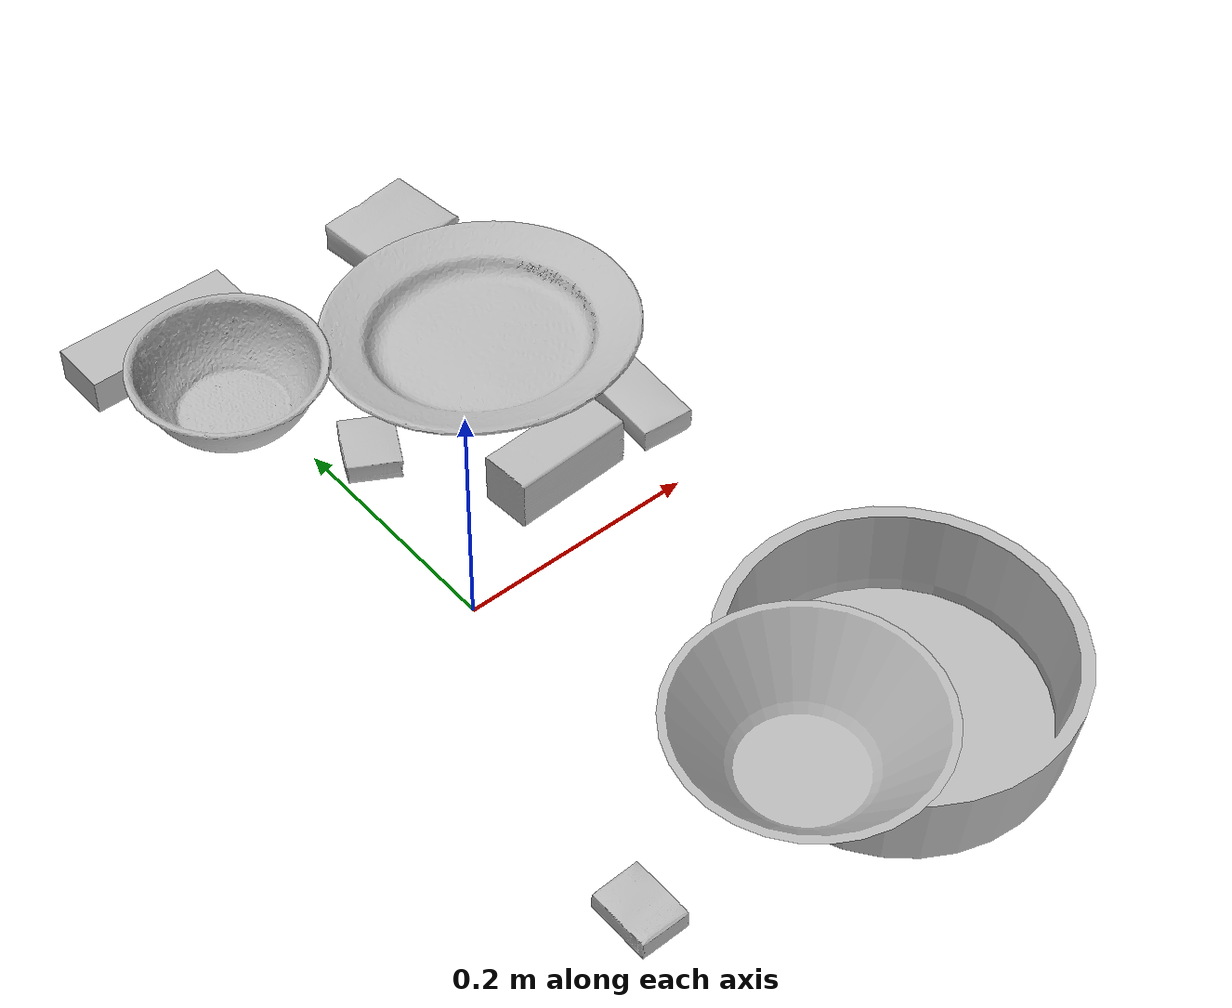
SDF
<sdf version="1.4">
  <world name="default">
    <light name="light1" type="point">
      <pose>0 0 1 0 0 0</pose>
      <diffuse>3 3 3 1</diffuse>
      <specular>3 3 3 1</specular>
    </light>
    <light name="light2" type="point">
      <pose>0 0.5 2 0 0 0</pose>
      <diffuse>1 1 1 1</diffuse>
      <specular>1 1 1 1</specular>
    </light>
    <light name="light3" type="point">
      <pose>0 0.5 2 0 0 0</pose>
      <diffuse>3 3 3 1</diffuse>
      <specular>3 3 3 1</specular>
    </light>
    <scene>
      <ambient>0.7 0.7 0.7</ambient>
    </scene>
    <model name="box1">
      <link name="link_box1">
        <collision name="default">
          <geometry>
            <mesh>
              <uri>model://jenga/collision_meshes/collision.obj</uri>
              <scale>1.0 1.0 1.0</scale>
            </mesh>
          </geometry>
          <surface>
            <friction>
              <ode>
                <mu>0.5</mu>
                <mu2>0.5</mu2>
              </ode>
            </friction>
          <contact>
        <ode>
            <max_vel>0</max_vel>
            <min_depth>0.0001</min_depth>
            <kp>1e8</kp>
        </ode>
    </contact></surface>
        </collision>
        <visual name="default">
          <geometry>
            <mesh>
              <uri>model://jenga/visual_meshes/visual.dae</uri>
              <scale>1.0 1.0 1.0</scale>
            </mesh>
          </geometry>
        </visual>
        <inertial>
          <mass>0.21843092143535614</mass>
          <pose>-2.502855807051674e-07 -0.00010250011109746993 -4.092339804628864e-05 0.0 -7.342154049184251e-07 0.0</pose>
          <inertia>
            <ixx>6.0445138e-05</ixx>
            <iyy>0.0004095746</iyy>
            <izz>0.00043725572</izz>
            <ixy>0</ixy>
            <ixz>0</ixz>
            <iyz>0</iyz>
          </inertia>
        </inertial>
      </link>
      <pose>-0.026206163689494133 0.3752001225948334 0.015000108629465103 1.4781236314186355e-05 -2.0627287181579481e-07 -3.1415855950033924</pose>
    </model>
    <model name="box11">
      <link name="link_box11">
        <collision name="default">
          <geometry>
            <mesh>
              <uri>model://pudding_box/collision_meshes/collision.obj</uri>
              <scale>0.5 0.5 0.5</scale>
            </mesh>
          </geometry>
          <surface>
            <friction>
              <ode>
                <mu>0.5</mu>
                <mu2>0.5</mu2>
              </ode>
            </friction>
          <contact>
        <ode>
            <max_vel>0</max_vel>
            <min_depth>0.0001</min_depth>
            <kp>1e8</kp>
        </ode>
    </contact></surface>
        </collision>
        <visual name="default">
          <geometry>
            <mesh>
              <uri>model://pudding_box/visual_meshes/visual.dae</uri>
              <scale>0.5 0.5 0.5</scale>
            </mesh>
          </geometry>
        </visual>
        <inertial>
          <mass>0.04130476340651512</mass>
          <pose>0.00024474109522998333 0.00040339428232982755 -0.0002594413817860186 0.005213101341234124 -0.006603795469139562 0.020079830758209564</pose>
          <inertia>
            <ixx>1.1673226e-05</ixx>
            <iyy>7.85383e-06</iyy>
            <izz>1.723857e-05</izz>
            <ixy>0</ixy>
            <ixz>0</ixz>
            <iyz>0</iyz>
          </inertia>
        </inertial>
      </link>
      <pose>0.03472243994474411 0.17355391383171082 0.009862905368208885 0.022348498863978737 -0.011391763490800275 2.6458016110264935</pose>
    </model>
    <model name="box2">
      <link name="link_box2">
        <collision name="default">
          <geometry>
            <mesh>
              <uri>model://gelatin_box/collision_meshes/collision.obj</uri>
              <scale>1.0 1.0 1.0</scale>
            </mesh>
          </geometry>
          <surface>
            <friction>
              <ode>
                <mu>0.5</mu>
                <mu2>0.5</mu2>
              </ode>
            </friction>
          <contact>
        <ode>
            <max_vel>0</max_vel>
            <min_depth>0.0001</min_depth>
            <kp>1e8</kp>
        </ode>
    </contact></surface>
        </collision>
        <visual name="default">
          <geometry>
            <mesh>
              <uri>model://gelatin_box/visual_meshes/visual.dae</uri>
              <scale>1.0 1.0 1.0</scale>
            </mesh>
          </geometry>
        </visual>
        <inertial>
          <mass>0.24153950810432434</mass>
          <pose>0.0004319618456065655 0.00011156871914863586 -0.0003640321083366871 -0.001050371984258798 -0.004755819621622892 0.016440559472145032</pose>
          <inertia>
            <ixx>0.00017050719</ixx>
            <iyy>0.00012179239</iyy>
            <izz>0.0002595499</izz>
            <ixy>0</ixy>
            <ixz>0</ixz>
            <iyz>0</iyz>
          </inertia>
        </inertial>
      </link>
      <pose>0.1966547816991806 0.3591346740722656 0.015168299898505211 0.0055995700471692805 -0.007306917396555964 1.6695660371040166</pose>
    </model>
    <model name="box21">
      <link name="link_box21">
        <collision name="default">
          <geometry>
            <mesh>
              <uri>model://cracker_box/collision_meshes/collision.obj</uri>
              <scale>0.25 0.25 0.25</scale>
            </mesh>
          </geometry>
          <surface>
            <friction>
              <ode>
                <mu>0.5</mu>
                <mu2>0.5</mu2>
              </ode>
            </friction>
          <contact>
        <ode>
            <max_vel>0</max_vel>
            <min_depth>0.0001</min_depth>
            <kp>1e8</kp>
        </ode>
    </contact></surface>
        </collision>
        <visual name="default">
          <geometry>
            <mesh>
              <uri>model://cracker_box/visual_meshes/visual.dae</uri>
              <scale>0.25 0.25 0.25</scale>
            </mesh>
          </geometry>
        </visual>
        <inertial>
          <mass>0.04855586588382721</mass>
          <pose>0.00023660322767682374 6.358561222441494e-05 -0.00042573834070935845 -0.00031620783521113603 -0.01110649053142329 0.0025467954689779603</pose>
          <inertia>
            <ixx>7.719027e-06</ixx>
            <iyy>1.2745631e-05</iyy>
            <izz>1.8189185e-05</izz>
            <ixy>0</ixy>
            <ixz>0</ixz>
            <iyz>0</iyz>
          </inertia>
        </inertial>
      </link>
      <pose>-0.07951704412698746 -0.27825313806533813 0.009120450355112553 -0.011787964458293762 -0.007367205808352632 1.5713564170318506</pose>
    </model>
    <model name="box3">
      <link name="link_box3">
        <collision name="default">
          <geometry>
            <mesh>
              <uri>model://wood_block/collision_meshes/collision.obj</uri>
              <scale>0.5 0.5 0.5</scale>
            </mesh>
          </geometry>
          <surface>
            <friction>
              <ode>
                <mu>0.5</mu>
                <mu2>0.5</mu2>
              </ode>
            </friction>
          <contact>
        <ode>
            <max_vel>0</max_vel>
            <min_depth>0.0001</min_depth>
            <kp>1e8</kp>
        </ode>
    </contact></surface>
        </collision>
        <visual name="default">
          <geometry>
            <mesh>
              <uri>model://wood_block/visual_meshes/visual.dae</uri>
              <scale>0.5 0.5 0.5</scale>
            </mesh>
          </geometry>
        </visual>
        <inertial>
          <mass>0.17342756688594818</mass>
          <pose>-2.906657982748584e-06 -0.000285404734313488 0.00013204291462898254 -0.052208426481931185 -0.005192696107352816 -0.006861379630616638</pose>
          <inertia>
            <ixx>5.8018082e-05</ixx>
            <iyy>0.00018327912</iyy>
            <izz>0.00018259356</izz>
            <ixy>0</ixy>
            <ixz>0</ixz>
            <iyz>0</iyz>
          </inertia>
        </inertial>
      </link>
      <pose>0.12993581593036652 0.06353975087404251 0.02262944169342518 -0.00523485429377445 0.005718908020737976 0.055695502920926426</pose>
    </model>
    <model name="box31">
      <link name="link_box31">
        <collision name="default">
          <geometry>
            <mesh>
              <uri>model://sugar_box/collision_meshes/collision.obj</uri>
              <scale>0.5 0.5 0.5</scale>
            </mesh>
          </geometry>
          <surface>
            <friction>
              <ode>
                <mu>0.5</mu>
                <mu2>0.5</mu2>
              </ode>
            </friction>
          <contact>
        <ode>
            <max_vel>0</max_vel>
            <min_depth>0.0001</min_depth>
            <kp>1e8</kp>
        </ode>
    </contact></surface>
        </collision>
        <visual name="default">
          <geometry>
            <mesh>
              <uri>model://sugar_box/visual_meshes/visual.dae</uri>
              <scale>0.5 0.5 0.5</scale>
            </mesh>
          </geometry>
        </visual>
        <inertial>
          <mass>0.102778859436512</mass>
          <pose>0.0005171863595023751 1.924554817378521e-05 -0.00018182402709499002 -0.00040462592244169 0.0010506634051582892 0.0026153783234817013</pose>
          <inertia>
            <ixx>2.1408765e-05</ixx>
            <iyy>6.919753e-05</iyy>
            <izz>8.2837694e-05</izz>
            <ixy>0</ixy>
            <ixz>0</ixz>
            <iyz>0</iyz>
          </inertia>
        </inertial>
      </link>
      <pose>0.22705049812793732 0.08151831477880478 0.011399299837648869 0.0007752658954601711 -0.02343225235150046 -1.664147203401615</pose>
    </model>
    <model name="plate1">
      <link name="link_plate1">
        <collision name="default">
          <geometry>
            <mesh>
              <uri>model://pan_tefal/collision_meshes/collision.obj</uri>
              <scale>1.0 1.0 1.0</scale>
            </mesh>
          </geometry>
          <surface>
            <friction>
              <ode>
                <mu>0.5</mu>
                <mu2>0.5</mu2>
              </ode>
            </friction>
          <contact>
        <ode>
            <max_vel>0</max_vel>
            <min_depth>0.0001</min_depth>
            <kp>1e8</kp>
        </ode>
    </contact></surface>
        </collision>
        <visual name="default">
          <geometry>
            <mesh>
              <uri>model://pan_tefal/visual_meshes/visual.dae</uri>
              <scale>1.0 1.0 1.0</scale>
            </mesh>
          </geometry>
        </visual>
        <inertial>
          <mass>1.4199398756027222</mass>
          <pose>-0.00018002341676037759 3.278919029980898e-05 -0.00851493515074253 0.0008190238651519852 -0.0003301374854212985 -0.3318555266382279</pose>
          <inertia>
            <ixx>0.009801778</ixx>
            <iyy>0.009864969</iyy>
            <izz>0.01804318</izz>
            <ixy>0</ixy>
            <ixz>0</ixz>
            <iyz>0</iyz>
          </inertia>
        </inertial>
      </link>
      <pose>0.1664203256368637 -0.26567479968070984 0.03805001080036163 -1.6275443416539453e-07 2.5685250645386568e-08 1.7792579081844713</pose>
    </model>
    <model name="bowl1">
      <link name="link_bowl1">
        <collision name="default">
          <geometry>
            <mesh>
              <uri>model://bowl/collision_meshes/collision.obj</uri>
              <scale>1.0 1.0 1.0</scale>
            </mesh>
          </geometry>
          <surface>
            <friction>
              <ode>
                <mu>0.5</mu>
                <mu2>0.5</mu2>
              </ode>
            </friction>
          <contact>
        <ode>
            <max_vel>0</max_vel>
            <min_depth>0.0001</min_depth>
            <kp>1e8</kp>
        </ode>
    </contact></surface>
        </collision>
        <visual name="default">
          <geometry>
            <mesh>
              <uri>model://bowl/visual_meshes/visual.dae</uri>
              <scale>1.0 1.0 1.0</scale>
            </mesh>
          </geometry>
        </visual>
        <inertial>
          <mass>0.10393582284450531</mass>
          <pose>0.00020445296831894666 -0.001030207728035748 -0.0008042644476518035 -0.01576405922653839 0.014546845721322095 0.7140430703653545</pose>
          <inertia>
            <ixx>0.00023874876</ixx>
            <iyy>0.00023341418</iyy>
            <izz>0.00040165734</izz>
            <ixy>0</ixy>
            <ixz>0</ixz>
            <iyz>0</iyz>
          </inertia>
        </inertial>
      </link>
      <pose>-0.0191405788064003 0.2825580835342407 0.0277799591422081 -7.658940663116236e-06 6.3150406107167375e-06 -2.3391475246456834</pose>
    </model>
    <model name="plate2">
      <link name="link_plate2">
        <collision name="default">
          <geometry>
            <mesh>
              <uri>model://plate/collision_meshes/collision.obj</uri>
              <scale>1.0 1.0 1.0</scale>
            </mesh>
          </geometry>
          <surface>
            <friction>
              <ode>
                <mu>0.5</mu>
                <mu2>0.5</mu2>
              </ode>
            </friction>
          <contact>
        <ode>
            <max_vel>0</max_vel>
            <min_depth>0.0001</min_depth>
            <kp>1e8</kp>
        </ode>
    </contact></surface>
        </collision>
        <visual name="default">
          <geometry>
            <mesh>
              <uri>model://plate/visual_meshes/visual.dae</uri>
              <scale>1.0 1.0 1.0</scale>
            </mesh>
          </geometry>
        </visual>
        <inertial>
          <mass>0.11643410474061966</mass>
          <pose>-0.0006044629844836891 0.000278257648460567 -0.001056199660524726 0.0022187586917557377 -0.0032254970862864826 0.45261837235677477</pose>
          <inertia>
            <ixx>0.00054468104</ixx>
            <iyy>0.0005394714</iyy>
            <izz>0.0010653147</izz>
            <ixy>0</ixy>
            <ixz>0</ixz>
            <iyz>0</iyz>
          </inertia>
        </inertial>
      </link>
      <pose>0.1683751940727234 0.20359544456005096 0.02904653362929821 0.01520741520204548 -0.0632602956778078 -1.7643186268121878</pose>
    </model>
    <model name="bowl2">
      <link name="link_bowl2">
        <collision name="default">
          <geometry>
            <mesh>
              <uri>model://bowl_a/collision_meshes/collision.obj</uri>
              <scale>1.0 1.0 1.0</scale>
            </mesh>
          </geometry>
          <surface>
            <friction>
              <ode>
                <mu>0.5</mu>
                <mu2>0.5</mu2>
              </ode>
            </friction>
          <contact>
        <ode>
            <max_vel>0</max_vel>
            <min_depth>0.0001</min_depth>
            <kp>1e8</kp>
        </ode>
    </contact></surface>
        </collision>
        <visual name="default">
          <geometry>
            <mesh>
              <uri>model://bowl_a/visual_meshes/visual.dae</uri>
              <scale>1.0 1.0 1.0</scale>
            </mesh>
          </geometry>
        </visual>
        <inertial>
          <mass>0.4875580668449402</mass>
          <pose>0.00027867365861311555 4.73092841275502e-05 -0.0013765289913862944 -0.0009805446644095745 -0.0010938154105800495 -0.1912289991244328</pose>
          <inertia>
            <ixx>0.0013881001</ixx>
            <iyy>0.0013966226</iyy>
            <izz>0.0024687892</izz>
            <ixy>0</ixy>
            <ixz>0</ixz>
            <iyz>0</iyz>
          </inertia>
        </inertial>
      </link>
      <pose>0.04185878112912178 -0.29899847507476807 0.10625512152910233 0.00011712890749924163 -0.00012385813241407617 -0.5182646209133378</pose>
    </model>
  <physics type="ode">
      <max_contacts>50</max_contacts>
      <ode>
        <solver>
          <type>quick</type>
          <iters>75</iters>
        </solver>
        <constraints>
          <contact_max_correcting_vel>0</contact_max_correcting_vel>
          <contact_surface_layer>0</contact_surface_layer>
        </constraints>
      </ode>
    </physics></world>
</sdf>
